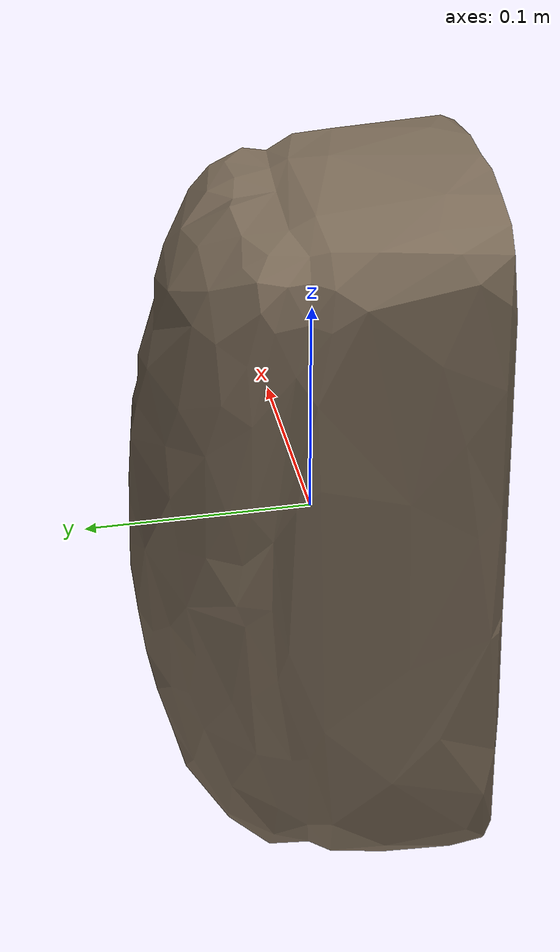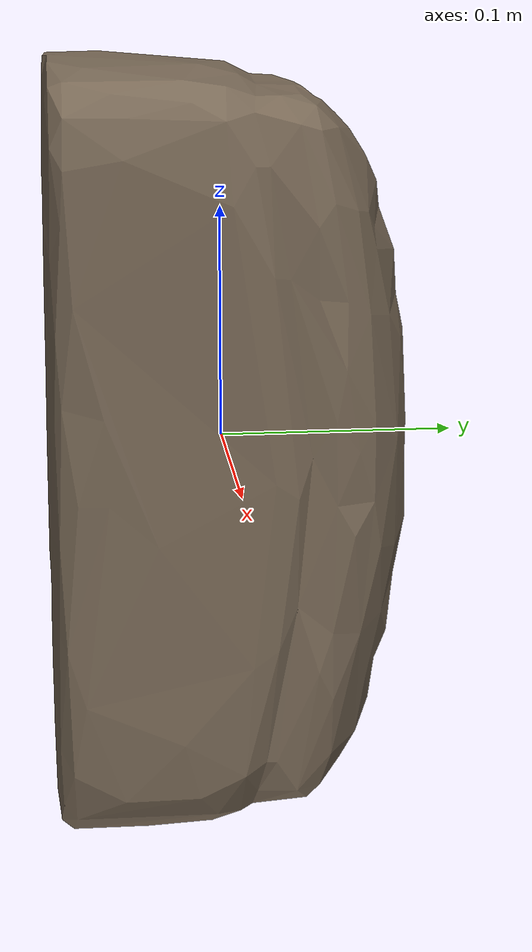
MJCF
<mujoco model="Bread_5">
  <compiler autolimits="true" boundmass="0.01" angle="radian"/>
  <default>
    <default class="/">
      <default class="__VISUAL_MJT__">
        <geom contype="0" conaffinity="0" group="0"/>
      </default>
      <default class="__STRUCTURAL_MJT__">
        <geom contype="8" conaffinity="15" group="4" friction="0.90000000000000002 0.90000000000000002 0.001" solref="0.025000000000000001 1" solimp="0.998 0.998 0.001"/>
      </default>
      <default class="__DYNAMIC_MJT__">
        <geom contype="1" conaffinity="15" group="4" friction="0.90000000000000002 0.90000000000000002 0.001" solref="0.025000000000000001 1" solimp="0.998 0.998 0.001"/>
      </default>
    </default>
  </default>
  <asset>
    <texture name="Bread2_Mat2" type="2d" file="Bread2_AlbedoTransparency.png"/>
    <material name="material_Bread2_Mat2" class="/" texture="Bread2_Mat2" specular="0.5" shininess="0.5" rgba="0.63970590000000005 0.57855760000000001 0.503 1"/>
    <mesh name="Bread_5_bread2_b_mesh" class="/" file="Bread_5_bread2_b_mesh/Bread_5_bread2_b_mesh.obj" scale="1 1 1"/>
  </asset>
  <worldbody>
    <body name="Bread_5">
      <joint name="Bread_5_free" class="/" type="free" pos="0 0 0" axis="0 0 1" stiffness="0" range="0 0" armature="0" damping="0.10000000000000001" frictionloss="0"/>
      <body name="Bread_5_bread2_b_mesh" pos="-0 0.00381 0" quat="1 0 0 0">
        <geom name="Bread_5_bread2_b_mesh" class="__VISUAL_MJT__" type="mesh" material="material_Bread2_Mat2" shellinertia="false" mesh="Bread_5_bread2_b_mesh"/>
        <geom name="Bread_5_PrimitiveCollider_0" class="__DYNAMIC_MJT__" type="box" size="0.070641130208969116 0.045136451721191406 0.15914295613765717" rgba="0 1 0 1" pos="-0 -0.03650665283203125 0" quat="1 0 0 0"/>
        <geom name="Bread_5_PrimitiveCollider_1" class="__DYNAMIC_MJT__" type="capsule" size="0.071186944842338562 0.085120499134063721" rgba="0 1 0 1" pos="-0 0.002829819917678833 1.1026859283447266e-06" quat="1.517286444557021e-06 0.99999999999884892 0 0"/>
      </body>
    </body>
  </worldbody>
</mujoco>
